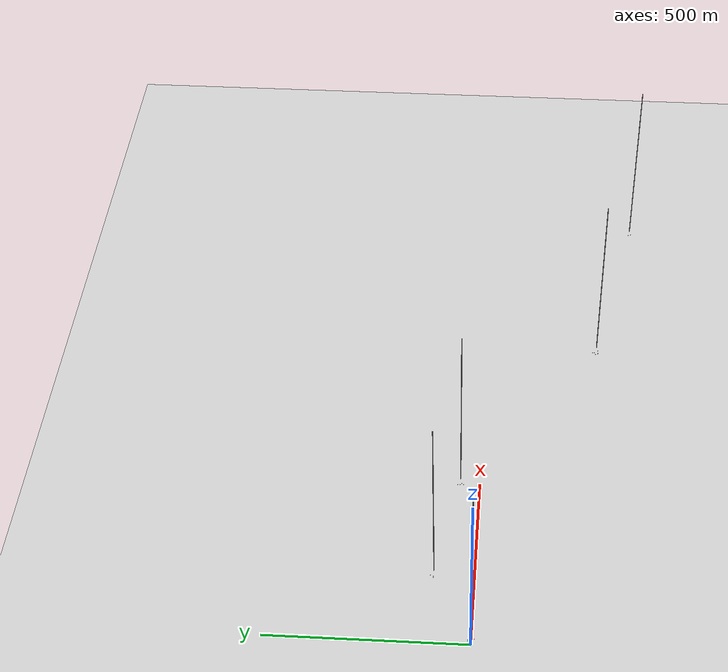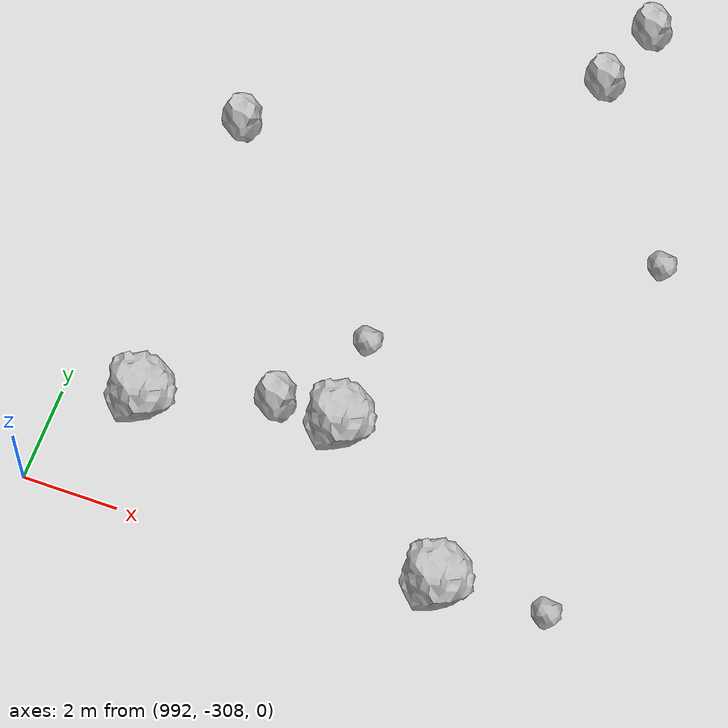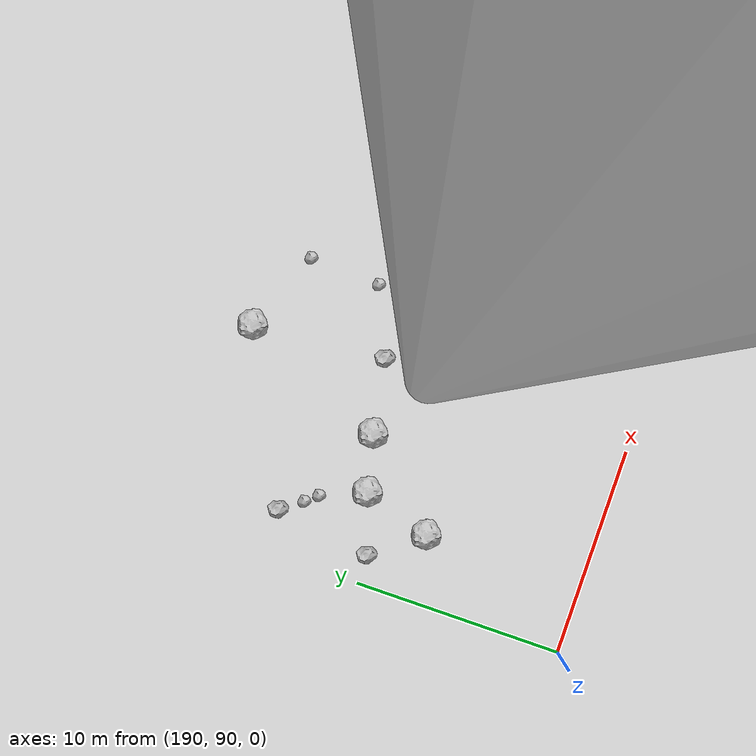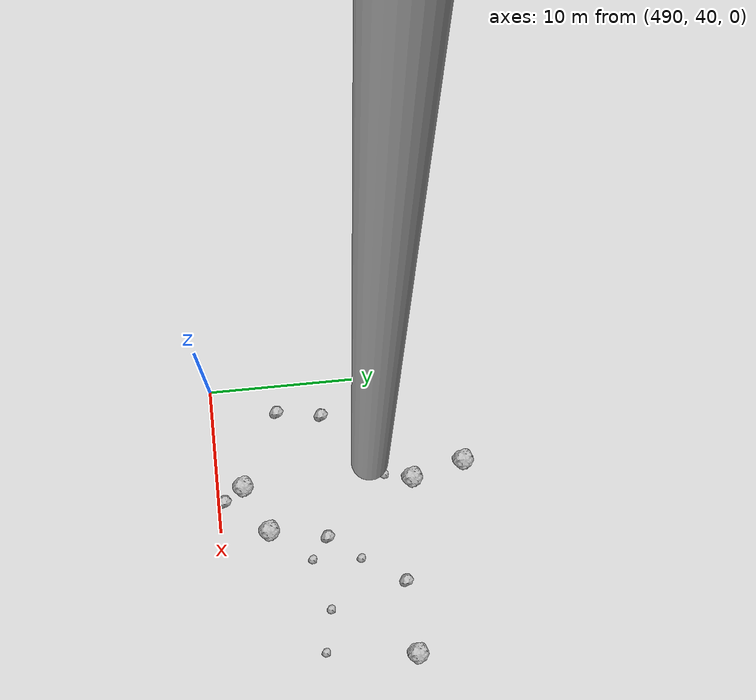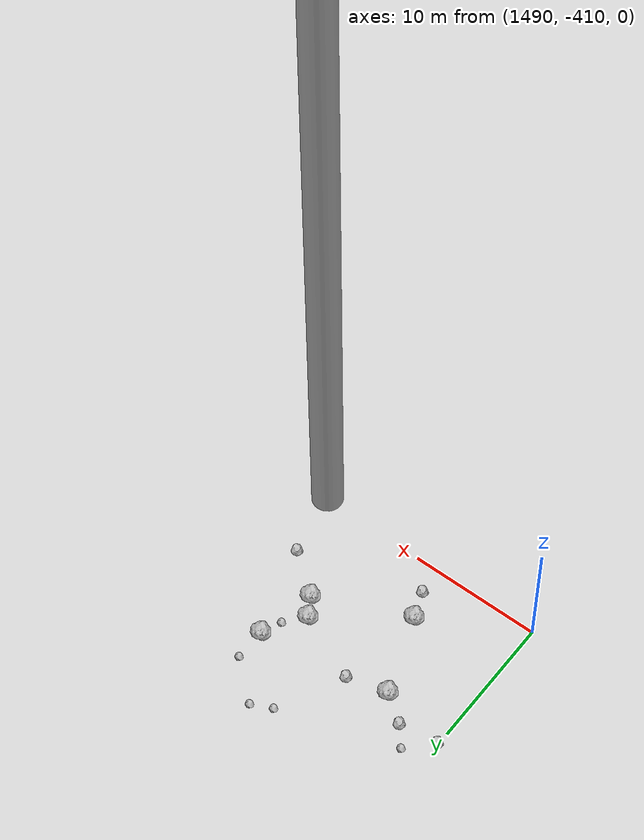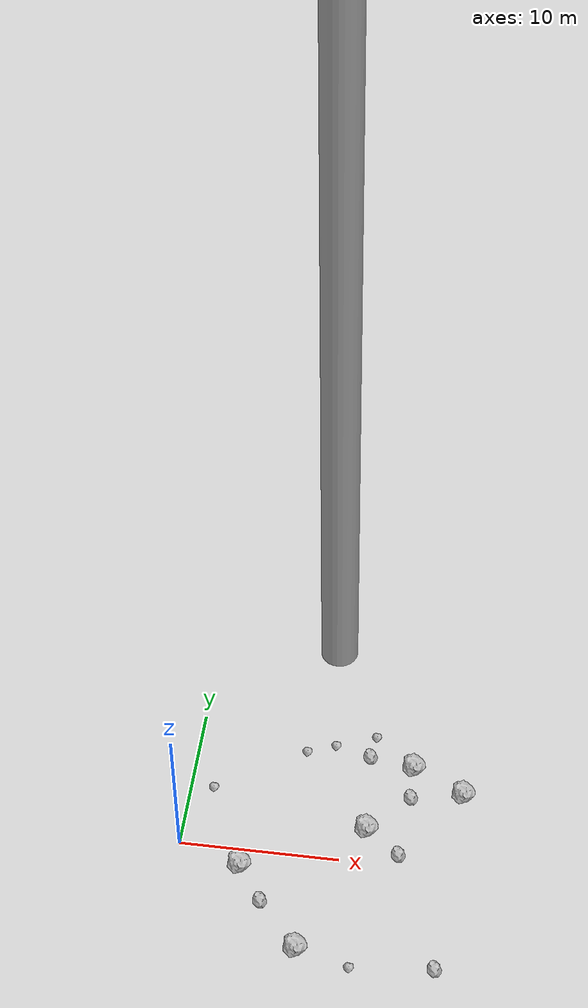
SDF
<?xml version="1.0" ?>
<sdf version="1.6">
  <world name="default">

    <include>
      <uri>model://custom_ground</uri>
    </include>

    <include>
      <uri>model://sun</uri>
    </include>

    <spherical_coordinates>
      <surface_model>EARTH_WGS84</surface_model>
      <latitude_deg>38.161479</latitude_deg>
      <longitude_deg>-122.454630</longitude_deg>
      <elevation>488.0</elevation>
      <heading_deg>90</heading_deg>
    </spherical_coordinates>

    <model name="rock1_0_0">
      <include>
        <uri>model://rock1</uri>
        <pose>11.422225503263455 2.4020552220421347 0.5 0 0 0</pose>
      </include>
    </model>
    <model name="rock1_0_1">
      <include>
        <uri>model://rock1</uri>
        <pose>8.24478400118636 -6.764326403960135 0.5 0 0 0</pose>
      </include>
    </model>
    <model name="rock1_0_2">
      <include>
        <uri>model://rock1</uri>
        <pose>13.853802704504183 7.484550133270034 0.5 0 0 0</pose>
      </include>
    </model>
    <model name="rock1_0_3">
      <include>
        <uri>model://rock1</uri>
        <pose>3.9854957110124345 -1.2722802684378003 0.5 0 0 0</pose>
      </include>
    </model>
    <model name="rock1_0_4">
      <include>
        <uri>model://rock1</uri>
        <pose>17.167882150223054 5.77515349943042 0.5 0 0 0</pose>
      </include>
    </model>
    <model name="rock2_0_0">
      <include>
        <uri>model://rock2</uri>
        <pose>16.62942245597364 -7.1408675891036255 0.3 0 0 0</pose>
      </include>
    </model>
    <model name="rock2_0_1">
      <include>
        <uri>model://rock2</uri>
        <pose>5.619867096481242 -3.668082195074584 0.3 0 0 0</pose>
      </include>
    </model>
    <model name="rock2_0_2">
      <include>
        <uri>model://rock2</uri>
        <pose>10.99634877810934 8.038237042054043 0.3 0 0 0</pose>
      </include>
    </model>
    <model name="rock2_0_3">
      <include>
        <uri>model://rock2</uri>
        <pose>13.888326795237358 5.174051222941415 0.3 0 0 0</pose>
      </include>
    </model>
    <model name="rock2_0_4">
      <include>
        <uri>model://rock2</uri>
        <pose>13.592993443482088 0.7517221039685573 0.3 0 0 0</pose>
      </include>
    </model>
    <model name="rock3_0_0">
      <include>
        <uri>model://rock3</uri>
        <pose>8.69685395181545 8.653596385835556 0.2 0 0 0</pose>
      </include>
    </model>
    <model name="rock3_0_1">
      <include>
        <uri>model://rock3</uri>
        <pose>1.4451162374370252 4.402660860244206 0.2 0 0 0</pose>
      </include>
    </model>
    <model name="rock3_0_2">
      <include>
        <uri>model://rock3</uri>
        <pose>11.207530739366689 9.647032062445373 0.2 0 0 0</pose>
      </include>
    </model>
    <model name="rock3_0_3">
      <include>
        <uri>model://rock3</uri>
        <pose>6.921895526881352 7.940444905675502 0.2 0 0 0</pose>
      </include>
    </model>
    <model name="rock3_0_4">
      <include>
        <uri>model://rock3</uri>
        <pose>11.555909606772003 -7.666654788261267 0.2 0 0 0</pose>
      </include>
    </model>
    <model name="rock1_1_0">
      <include>
        <uri>model://rock1</uri>
        <pose>194.30289541031325 100.95400964401037 0.5 0 0 0</pose>
      </include>
    </model>
    <model name="rock1_1_1">
      <include>
        <uri>model://rock1</uri>
        <pose>200.00837601963607 108.62334392909136 0.5 0 0 0</pose>
      </include>
    </model>
    <model name="rock1_1_2">
      <include>
        <uri>model://rock1</uri>
        <pose>197.00010985639284 101.60680538139778 0.5 0 0 0</pose>
      </include>
    </model>
    <model name="rock1_1_3">
      <include>
        <uri>model://rock1</uri>
        <pose>193.29184145395027 97.6879756975168 0.5 0 0 0</pose>
      </include>
    </model>
    <model name="rock1_1_4">
      <include>
        <uri>model://rock1</uri>
        <pose>207.01605745315396 97.02569364035789 0.5 0 0 0</pose>
      </include>
    </model>
    <model name="rock2_1_0">
      <include>
        <uri>model://rock2</uri>
        <pose>204.22590502637192 94.88766076261983 0.3 0 0 0</pose>
      </include>
    </model>
    <model name="rock2_1_1">
      <include>
        <uri>model://rock2</uri>
        <pose>191.44658033445347 100.04128536913244 0.3 0 0 0</pose>
      </include>
    </model>
    <model name="rock2_1_2">
      <include>
        <uri>model://rock2</uri>
        <pose>205.4654748848 101.36442125187915 0.3 0 0 0</pose>
      </include>
    </model>
    <model name="rock2_1_3">
      <include>
        <uri>model://rock2</uri>
        <pose>192.13448453719244 104.69214742289579 0.3 0 0 0</pose>
      </include>
    </model>
    <model name="rock2_1_4">
      <include>
        <uri>model://rock2</uri>
        <pose>200.4911386960963 102.2368992911669 0.3 0 0 0</pose>
      </include>
    </model>
    <model name="rock3_1_0">
      <include>
        <uri>model://rock3</uri>
        <pose>203.8229325803983 107.03006820266968 0.2 0 0 0</pose>
      </include>
    </model>
    <model name="rock3_1_1">
      <include>
        <uri>model://rock3</uri>
        <pose>192.85490374652517 103.61641384011477 0.2 0 0 0</pose>
      </include>
    </model>
    <model name="rock3_1_2">
      <include>
        <uri>model://rock3</uri>
        <pose>202.8051652378981 97.70441822947437 0.2 0 0 0</pose>
      </include>
    </model>
    <model name="rock3_1_3">
      <include>
        <uri>model://rock3</uri>
        <pose>203.67020135331532 103.60476704787139 0.2 0 0 0</pose>
      </include>
    </model>
    <model name="rock3_1_4">
      <include>
        <uri>model://rock3</uri>
        <pose>193.34137541924932 103.04517623202682 0.2 0 0 0</pose>
      </include>
    </model>
    <model name="rock1_2_0">
      <include>
        <uri>model://rock1</uri>
        <pose>497.03053832285457 41.78228505508256 0.5 0 0 0</pose>
      </include>
    </model>
    <model name="rock1_2_1">
      <include>
        <uri>model://rock1</uri>
        <pose>509.4951831318624 52.6421789841591 0.5 0 0 0</pose>
      </include>
    </model>
    <model name="rock1_2_2">
      <include>
        <uri>model://rock1</uri>
        <pose>496.55675585560135 57.120069733037695 0.5 0 0 0</pose>
      </include>
    </model>
    <model name="rock1_2_3">
      <include>
        <uri>model://rock1</uri>
        <pose>497.457053471691 53.48772331677111 0.5 0 0 0</pose>
      </include>
    </model>
    <model name="rock1_2_4">
      <include>
        <uri>model://rock1</uri>
        <pose>500.2581547257204 43.3440436072687 0.5 0 0 0</pose>
      </include>
    </model>
    <model name="rock2_2_0">
      <include>
        <uri>model://rock2</uri>
        <pose>500.9784838101776 47.31203317195605 0.3 0 0 0</pose>
      </include>
    </model>
    <model name="rock2_2_1">
      <include>
        <uri>model://rock2</uri>
        <pose>504.48763212885865 52.384758975987474 0.3 0 0 0</pose>
      </include>
    </model>
    <model name="rock2_2_2">
      <include>
        <uri>model://rock2</uri>
        <pose>497.903903312131 40.44242843679436 0.3 0 0 0</pose>
      </include>
    </model>
    <model name="rock2_2_3">
      <include>
        <uri>model://rock2</uri>
        <pose>492.41132625844176 47.59658220021366 0.3 0 0 0</pose>
      </include>
    </model>
    <model name="rock2_2_4">
      <include>
        <uri>model://rock2</uri>
        <pose>491.91771314545514 44.5215289175636 0.3 0 0 0</pose>
      </include>
    </model>
    <model name="rock3_2_0">
      <include>
        <uri>model://rock3</uri>
        <pose>502.45650480257996 46.125566730645126 0.2 0 0 0</pose>
      </include>
    </model>
    <model name="rock3_2_1">
      <include>
        <uri>model://rock3</uri>
        <pose>502.6713677527161 49.452037097295715 0.2 0 0 0</pose>
      </include>
    </model>
    <model name="rock3_2_2">
      <include>
        <uri>model://rock3</uri>
        <pose>505.9662524541698 47.07581724131322 0.2 0 0 0</pose>
      </include>
    </model>
    <model name="rock3_2_3">
      <include>
        <uri>model://rock3</uri>
        <pose>508.8352668001398 46.476992039443076 0.2 0 0 0</pose>
      </include>
    </model>
    <model name="rock3_2_4">
      <include>
        <uri>model://rock3</uri>
        <pose>497.001817505171 51.59638251038049 0.2 0 0 0</pose>
      </include>
    </model>
    <model name="rock1_3_0">
      <include>
        <uri>model://rock1</uri>
        <pose>1007.533410530932 -304.9618636013474 0.5 0 0 0</pose>
      </include>
    </model>
    <model name="rock1_3_1">
      <include>
        <uri>model://rock1</uri>
        <pose>1006.6046910690197 -301.00720265788397 0.5 0 0 0</pose>
      </include>
    </model>
    <model name="rock1_3_2">
      <include>
        <uri>model://rock1</uri>
        <pose>997.5726004824703 -304.8075885864354 0.5 0 0 0</pose>
      </include>
    </model>
    <model name="rock1_3_3">
      <include>
        <uri>model://rock1</uri>
        <pose>993.6018207431234 -305.60982645354204 0.5 0 0 0</pose>
      </include>
    </model>
    <model name="rock1_3_4">
      <include>
        <uri>model://rock1</uri>
        <pose>1000.5274047098787 -307.36575584559927 0.5 0 0 0</pose>
      </include>
    </model>
    <model name="rock2_3_0">
      <include>
        <uri>model://rock2</uri>
        <pose>1000.0771823695133 -295.35706267226766 0.3 0 0 0</pose>
      </include>
    </model>
    <model name="rock2_3_1">
      <include>
        <uri>model://rock2</uri>
        <pose>996.1618463328032 -304.7124020062479 0.3 0 0 0</pose>
      </include>
    </model>
    <model name="rock2_3_2">
      <include>
        <uri>model://rock2</uri>
        <pose>993.2098980909736 -298.90368342426143 0.3 0 0 0</pose>
      </include>
    </model>
    <model name="rock2_3_3">
      <include>
        <uri>model://rock2</uri>
        <pose>999.0498491812663 -290.4349258174342 0.3 0 0 0</pose>
      </include>
    </model>
    <model name="rock2_3_4">
      <include>
        <uri>model://rock2</uri>
        <pose>1000.6348240892625 -293.8246012218233 0.3 0 0 0</pose>
      </include>
    </model>
    <model name="rock3_3_0">
      <include>
        <uri>model://rock3</uri>
        <pose>1006.7544313524782 -305.10422451894624 0.2 0 0 0</pose>
      </include>
    </model>
    <model name="rock3_3_1">
      <include>
        <uri>model://rock3</uri>
        <pose>1002.7053914383968 -307.25358113224803 0.2 0 0 0</pose>
      </include>
    </model>
    <model name="rock3_3_2">
      <include>
        <uri>model://rock3</uri>
        <pose>1002.533690809253 -299.231783204866 0.2 0 0 0</pose>
      </include>
    </model>
    <model name="rock3_3_3">
      <include>
        <uri>model://rock3</uri>
        <pose>997.8616490102733 -291.07664297722897 0.2 0 0 0</pose>
      </include>
    </model>
    <model name="rock3_3_4">
      <include>
        <uri>model://rock3</uri>
        <pose>997.4329507142511 -302.9084806585422 0.2 0 0 0</pose>
      </include>
    </model>
    <model name="rock1_4_0">
      <include>
        <uri>model://rock1</uri>
        <pose>1495.0746049064512 -399.978900221702 0.5 0 0 0</pose>
      </include>
    </model>
    <model name="rock1_4_1">
      <include>
        <uri>model://rock1</uri>
        <pose>1504.04099919273 -402.74880696274437 0.5 0 0 0</pose>
      </include>
    </model>
    <model name="rock1_4_2">
      <include>
        <uri>model://rock1</uri>
        <pose>1504.9244056136388 -398.30115114025654 0.5 0 0 0</pose>
      </include>
    </model>
    <model name="rock1_4_3">
      <include>
        <uri>model://rock1</uri>
        <pose>1497.215544135596 -405.8246296588144 0.5 0 0 0</pose>
      </include>
    </model>
    <model name="rock1_4_4">
      <include>
        <uri>model://rock1</uri>
        <pose>1503.1163434756484 -401.30886464417904 0.5 0 0 0</pose>
      </include>
    </model>
    <model name="rock2_4_0">
      <include>
        <uri>model://rock2</uri>
        <pose>1507.1277805398404 -405.1217300693036 0.3 0 0 0</pose>
      </include>
    </model>
    <model name="rock2_4_1">
      <include>
        <uri>model://rock2</uri>
        <pose>1497.9811531426903 -407.84474890620663 0.3 0 0 0</pose>
      </include>
    </model>
    <model name="rock2_4_2">
      <include>
        <uri>model://rock2</uri>
        <pose>1490.0847212905917 -398.96235311177503 0.3 0 0 0</pose>
      </include>
    </model>
    <model name="rock2_4_3">
      <include>
        <uri>model://rock2</uri>
        <pose>1498.0786309210232 -399.19543433980766 0.3 0 0 0</pose>
      </include>
    </model>
    <model name="rock2_4_4">
      <include>
        <uri>model://rock2</uri>
        <pose>1493.0000717700598 -398.55501473478114 0.3 0 0 0</pose>
      </include>
    </model>
    <model name="rock3_4_0">
      <include>
        <uri>model://rock3</uri>
        <pose>1500.478662599098 -394.3062545693074 0.2 0 0 0</pose>
      </include>
    </model>
    <model name="rock3_4_1">
      <include>
        <uri>model://rock3</uri>
        <pose>1504.2841231035288 -399.89708831912446 0.2 0 0 0</pose>
      </include>
    </model>
    <model name="rock3_4_2">
      <include>
        <uri>model://rock3</uri>
        <pose>1504.9086231993795 -395.9842274569495 0.2 0 0 0</pose>
      </include>
    </model>
    <model name="rock3_4_3">
      <include>
        <uri>model://rock3</uri>
        <pose>1491.7784506920018 -397.213279967908 0.2 0 0 0</pose>
      </include>
    </model>
    <model name="rock3_4_4">
      <include>
        <uri>model://rock3</uri>
        <pose>1501.9926472829172 -393.5693209909846 0.2 0 0 0</pose>
      </include>
    </model>

    <model name="cylinder_1">
      <static>true</static>
      <link name="link">
        <visual name="visual">
          <geometry>
            <cylinder>
              <radius>1</radius>
              <length>500</length>
            </cylinder>
          </geometry>
        </visual>
      </link>
      <pose>10 0 270 0 0 0</pose>
    </model>

    <model name="cylinder_2">
      <static>true</static>
      <link name="link">
        <visual name="visual">
          <geometry>
            <cylinder>
              <radius>1</radius>
              <length>500</length>
            </cylinder>
          </geometry>
        </visual>
      </link>
      <pose>200 100 270 0 0 0</pose>
    </model>

    <model name="cylinder_3">
      <static>true</static>
      <link name="link">
        <visual name="visual">
          <geometry>
            <cylinder>
              <radius>1</radius>
              <length>500</length>
            </cylinder>
          </geometry>
        </visual>
      </link>
      <pose>500 50 270 0 0 0</pose>
    </model>

    <model name="cylinder_4">
      <static>true</static>
      <link name="link">
        <visual name="visual">
          <geometry>
            <cylinder>
              <radius>1</radius>
              <length>500</length>
            </cylinder>
          </geometry>
        </visual>
      </link>
      <pose>1000 -300 270 0 0 0</pose>
    </model>

    <model name="cylinder_5">
      <static>true</static>
      <link name="link">
        <visual name="visual">
          <geometry>
            <cylinder>
              <radius>1</radius>
              <length>500</length>
            </cylinder>
          </geometry>
        </visual>
      </link>
      <pose>1500 -400 270 0 0 0</pose>
    </model>

  </world>
</sdf>

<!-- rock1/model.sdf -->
<sdf version="1.6">
  <model name="rock1">
    <static>true</static> <!-- Set to true if the model should not move -->
    <pose>0 0 0 0 0 0</pose>

    <!--z offset is 0.5 for full scale-->

    <link name="link">
      <collision name="rock1_collision">
        <geometry>
          <mesh>
            <uri>model://meshes/rock1.dae</uri>
          </mesh>
        </geometry>
      </collision>
      <visual name="rock1_visual">
        <geometry>
          <mesh>
            <uri>model://meshes/rock1.dae</uri>
          </mesh>
        </geometry>
        <material>
          <script>
            <uri>model://materials/scripts/sand_pebbles.material</uri>
            <name>custom_ground/Image</name>
          </script>
        </material>
      </visual>
    </link>
  </model>
</sdf>

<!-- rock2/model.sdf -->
<sdf version="1.6">
  <model name="rock2">
    <static>true</static> <!-- Set to true if the model should not move -->
    <pose>0 0 0 0 0 0</pose>

    <!--z offset is 0.3 for full scale-->

    <link name="link">
      <collision name="rock2_collision">
        <geometry>
          <mesh>
            <uri>model://meshes/rock2.dae</uri>
          </mesh>
        </geometry>
      </collision>
      <visual name="rock2_visual">
        <geometry>
          <mesh>
            <uri>model://meshes/rock2.dae</uri>
          </mesh>
        </geometry>
        <material>
          <script>
            <uri>model://materials/scripts/sand_pebbles.material</uri>
            <name>custom_ground/Image</name>
          </script>
        </material>
      </visual>
    </link>
  </model>
</sdf>

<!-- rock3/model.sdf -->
<sdf version="1.6">
  <model name="rock3">
    <static>true</static> <!-- Set to true if the model should not move -->
    <pose>0 0 0 0 0 0</pose>

    <!--z offset is 0.2 for full scale-->

    <link name="link">
      <collision name="rock3_collision">
        <geometry>
          <mesh>
            <uri>model://meshes/rock3.dae</uri>
          </mesh>
        </geometry>
      </collision>
      <visual name="rock3_visual">
        <geometry>
          <mesh>
            <uri>model://meshes/rock3.dae</uri>
          </mesh>
        </geometry>
        <material>
          <script>
            <uri>model://materials/scripts/sand_pebbles.material</uri>
            <name>custom_ground/Image</name>
          </script>
        </material>
      </visual>
    </link>
  </model>
</sdf>

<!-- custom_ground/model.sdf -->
<sdf version="1.6">
  <model name="custom_ground">
    <static>true</static> <!-- Ground is static and immovable -->
    <link name="ground_link">
      <pose>240 0 0 0 0 0</pose> <!-- Position and orientation relative to the world -->
      <!-- Visual Representation -->
      <visual name="ground_visual">
        <geometry>
          <plane>
            <normal>0 0 1</normal> <!-- Upward facing plane -->
            <size>500 500</size> <!-- Size of the plane -->
          </plane>
        </geometry>
        <material>
          <script>
            <uri>model://materials/scripts/sand_pebbles.material</uri>
            <name>custom_ground/Image</name>
          </script>
        </material>
      </visual>

      <!-- Collision Representation -->
      <collision name="ground_collision">
        <geometry>
          <plane>
            <normal>0 0 1</normal>
            <size>100 100</size>
          </plane>
        </geometry>
      </collision>

    </link>
  </model>
</sdf>
